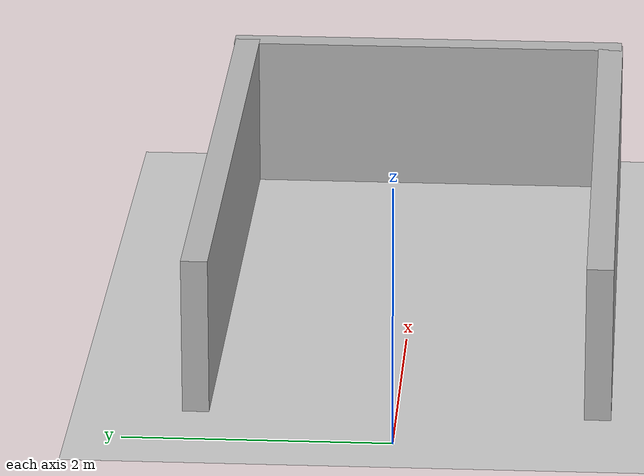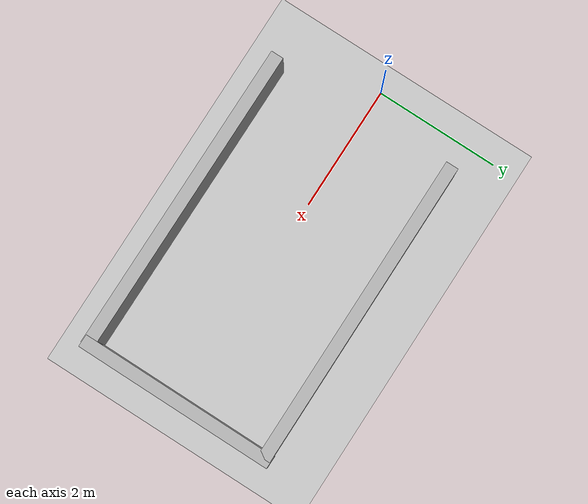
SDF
<?xml version="1.0"?>
<sdf version="1.6">
  <world name="v2-04g-r6-i3-compile-support-maneuver-s5157">
    <gravity>0 0 -9.81</gravity>
    <physics name="v2_deterministic" type="ode">
      <max_step_size>0.002</max_step_size>
      <real_time_update_rate>500</real_time_update_rate>
    </physics>
    <include>
      <uri>model://sun</uri>
    </include>
    <include>
      <uri>model://ground_plane</uri>
    </include>
    <model name="bay-left">
      <static>true</static>
      <pose>3.008378103 1.497082357 0.600000000 0 0 0.000251942</pose>
      <link name="link">
        <collision name="collision">
          <geometry>
            <box>
              <size>5.000000 0.200000 1.200000</size>
            </box>
          </geometry>
        </collision>
        <visual name="visual">
          <geometry>
            <box>
              <size>5.000000 0.200000 1.200000</size>
            </box>
          </geometry>
        </visual>
      </link>
    </model>
    <model name="bay-right">
      <static>true</static>
      <pose>3.017884981 -1.497709540 0.600000000 0 0 -0.002446134</pose>
      <link name="link">
        <collision name="collision">
          <geometry>
            <box>
              <size>5.000000 0.200000 1.200000</size>
            </box>
          </geometry>
        </collision>
        <visual name="visual">
          <geometry>
            <box>
              <size>5.000000 0.200000 1.200000</size>
            </box>
          </geometry>
        </visual>
      </link>
    </model>
    <model name="bay-back">
      <static>true</static>
      <pose>5.498650929 0.005662167 0.600000000 0 0 -0.003342531</pose>
      <link name="link">
        <collision name="collision">
          <geometry>
            <box>
              <size>0.200000 3.200000 1.200000</size>
            </box>
          </geometry>
        </collision>
        <visual name="visual">
          <geometry>
            <box>
              <size>0.200000 3.200000 1.200000</size>
            </box>
          </geometry>
        </visual>
      </link>
    </model>
  </world>
</sdf>
